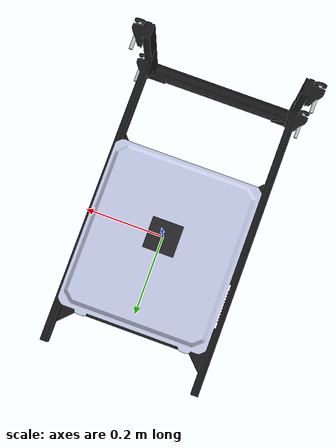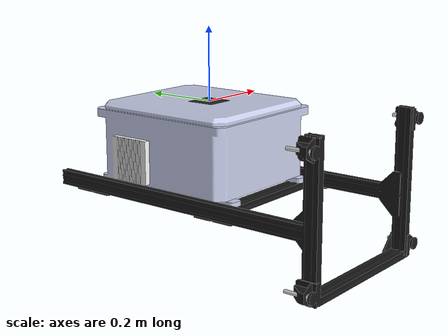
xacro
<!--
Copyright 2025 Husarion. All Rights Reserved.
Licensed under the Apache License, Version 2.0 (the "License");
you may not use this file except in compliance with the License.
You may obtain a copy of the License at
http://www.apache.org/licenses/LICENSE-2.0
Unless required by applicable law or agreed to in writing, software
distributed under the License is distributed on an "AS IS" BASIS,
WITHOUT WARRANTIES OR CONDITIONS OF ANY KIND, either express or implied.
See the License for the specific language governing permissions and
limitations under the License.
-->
<?xml version="1.0"?>

<robot xmlns:xacro="http://www.ros.org/wiki/xacro" name="wibotic_station">

  <xacro:arg name="apriltag_mount_height" default="0.5" />
  <xacro:arg name="apriltag_image" default="" />
  <xacro:arg name="apriltag_size" default="0.08" />
  <xacro:arg name="component_name" default="" />
  <xacro:arg name="root_link" default="apriltag_link" />
  <xacro:arg name="transmitter_height" default="0.3" />

    <xacro:macro name="wibotic_station"
               params="parent_link
                       xyz:='0.0 0.0 0.0'
                       rpy:='0.0 0.0 0.0'
                       component_name:=''
                       transmitter_height:=0.3">

    <xacro:if value="${component_name == ''}">
      <xacro:property name="component_name" value="wibotic_station" />
    </xacro:if>

    <xacro:property name="component_name_underscore" value="${component_name + '_' if component_name != '' else ''}" />

    <joint name="${parent_link}to_${component_name_underscore}wibotic_station_link_joint" type="fixed">
      <origin xyz="${xyz}" rpy="${rpy}" />
      <parent link="${parent_link}" />
      <child link="${component_name_underscore}wibotic_station_link" />
    </joint>

    <link name="${component_name_underscore}wibotic_station_link">
      <visual>
        <origin xyz="0.0 0.0 0.0" rpy="0.0 0.0 0.0" />
        <geometry>
          <mesh filename="package://husarion_components_description/meshes/wibotic_frame.dae" />
        </geometry>
      </visual>

      <!-- Fake collision fit to dae -->
      <collision>
        <origin xyz="-0.2 0.0  0.45" rpy="0.0 0.0 0.0" />
        <geometry>
          <box size="0.4 0.5 0.9" />
        </geometry>
      </collision>

      <!-- Fake inertia -->
      <inertial>
        <origin xyz="-0.2 0.0  0.45" rpy="0.0 0.0 0.0" />
        <mass value="15.0" />
        <inertia ixx="0.001111" ixy="0.0"      ixz="0.0"
                                iyy="0.001111" iyz="0.0"
                                               izz="0.001111" />
      </inertial>
    </link>

    <joint name="${component_name_underscore}wibotic_station_link_to_${component_name_underscore}wibotic_transmitter_joint" type="fixed">
      <origin xyz="0.0 0.0 ${transmitter_height + 0.135}" rpy="0.0 0.0 0.0" /> <!-- 0.135 is offset from mesh origin to bottom of transmitter case -->
      <parent link="${component_name_underscore}wibotic_station_link" />
      <child link="${component_name_underscore}wibotic_transmitter_link" />
    </joint>

    <link name="${component_name_underscore}wibotic_transmitter_link">
      <visual>
        <origin xyz="0.0 0.0 0.0" rpy="0.0 0.0 0.0" />
        <geometry>
          <mesh filename="package://husarion_components_description/meshes/wibotic_transmitter.dae" />
        </geometry>
      </visual>
    </link>

    <!-- Additional link for as a destination for docking -->
    <joint name="${component_name_underscore}wibotic_transmitter_link_to_${component_name_underscore}wibotic_dock_frame_joint" type="fixed">
      <origin xyz="0.05 0.0 0.0" rpy="0.0 0.0 ${pi}" />
      <parent link="${component_name_underscore}wibotic_transmitter_link" />
      <child link="${component_name_underscore}wibotic_dock_frame" />
    </joint>

    <link name="${component_name_underscore}wibotic_dock_frame" />

  </xacro:macro>

  <xacro:macro name="apriltag"
               params="parent_link
                       xyz:='0.0 0.0 0.0'
                       rpy:='0.0 0.0 0.0'
                       component_name:=''
                       size:=0.08">

    <xacro:property name="component_name_underscore" value="${component_name + '_' if component_name != '' else ''}" />

    <joint name="${parent_link}_to_${component_name_underscore}image_link_joint" type="fixed">
      <origin xyz="${xyz}" rpy="${rpy}" />
      <parent link="${parent_link}" />
      <child link="${component_name_underscore}image_link" />
    </joint>

    <link name="${component_name_underscore}image_link">
      <visual>
        <origin xyz="0 0 0" rpy="0 ${pi/2.0} 0" />
        <geometry>
          <box size="${size} ${size} 0.0001" />
        </geometry>
        <material name="Grey">
          <color rgba="0.15 0.15 0.15 1.0" />
        </material>
      </visual>

      <collision>
        <origin xyz="0 0 0" rpy="0 ${pi/2.0} 0" />
        <geometry>
          <box size="${size} ${size} 0.0001" />
        </geometry>
      </collision>
    </link>

    <gazebo reference="${component_name_underscore}image_link">
      <visual>
        <material>
          <diffuse>1.0 1.0 1.0 1</diffuse>
          <specular>0.6 0.6 0.6 1</specular>
          <ambient>1.0 1.0 1.0</ambient>
          <lighting>true</lighting>
          <emissive>0 0 0 1</emissive>
          <pbr>
            <metal>
              <albedo_map>$(arg apriltag_image)</albedo_map>
            </metal>
          </pbr>
        </material>
      </visual>
    </gazebo>

  </xacro:macro>

  <xacro:property name="component_name_prop" value="$(arg component_name)" />
  <xacro:property name="apriltag_name" value="${component_name_prop + '_apriltag' if component_name_prop != '' else 'apriltag'}" />

  <link name="$(arg root_link)" />

  <!-- AprilTag as root -->
  <xacro:apriltag parent_link="$(arg root_link)" xyz="0 0 0" rpy="0 -${pi/2.0} ${pi/2.0}" component_name="${apriltag_name}" size="$(arg apriltag_size)" />
  <xacro:wibotic_station parent_link="$(arg root_link)" xyz="0 -$(arg apriltag_mount_height) 0" rpy="${pi} -${pi/2.0} ${pi/2.0}" component_name="$(arg component_name)" transmitter_height="$(arg transmitter_height)" />

  <!-- Station as root -->

</robot>
